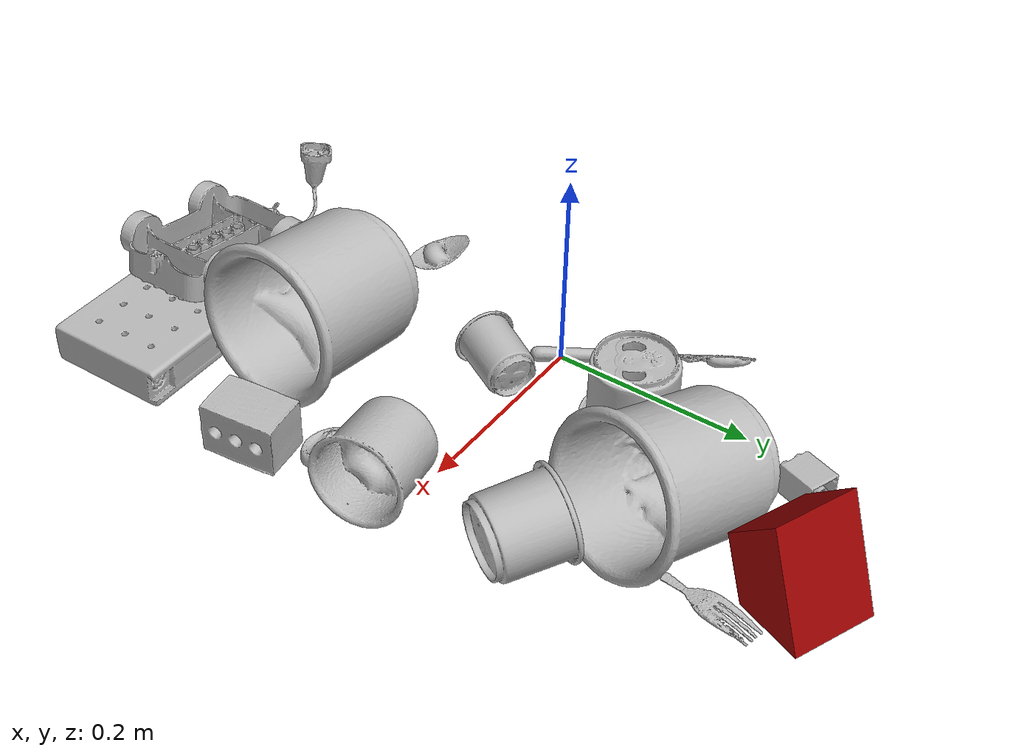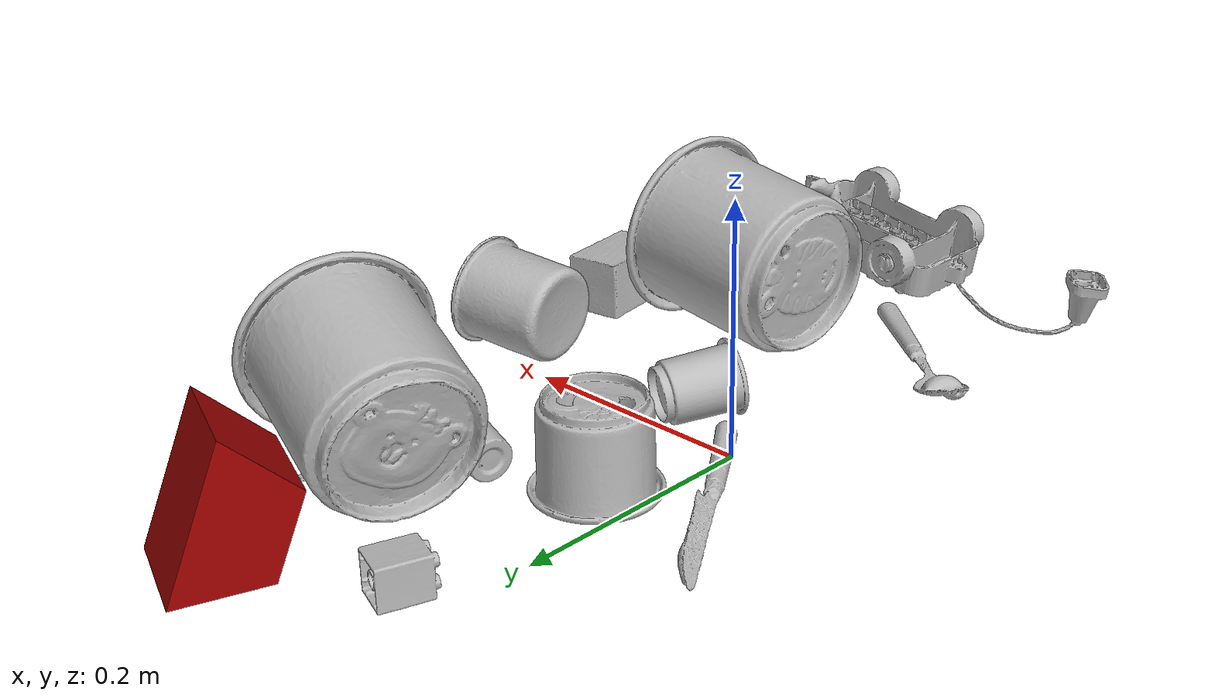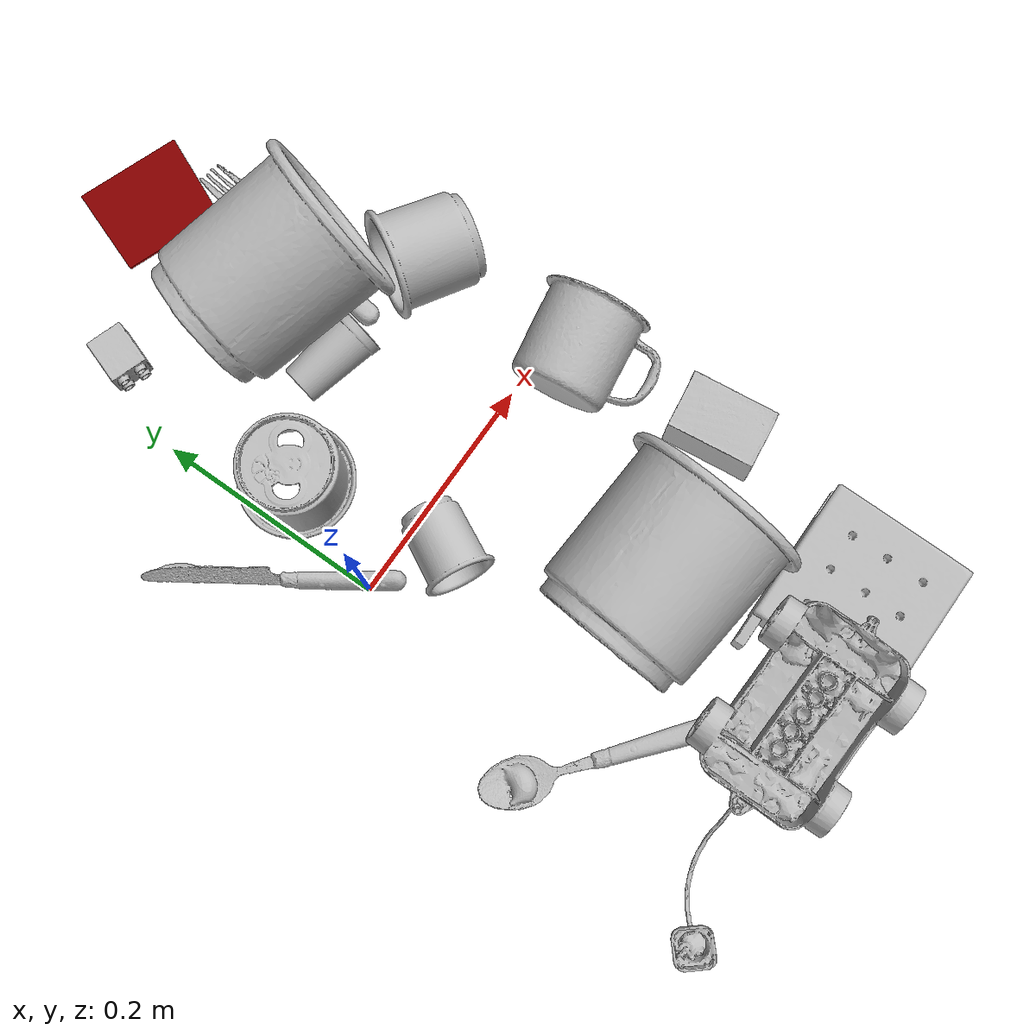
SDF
<sdf version="1.4">
  <world name="default">
    <light name="light1" type="point">
      <pose>0 0 1 0 0 0</pose>
      <diffuse>3 3 3 1</diffuse>
      <specular>3 3 3 1</specular>
    </light>
    <light name="light2" type="point">
      <pose>0 0.5 2 0 0 0</pose>
      <diffuse>1 1 1 1</diffuse>
      <specular>1 1 1 1</specular>
    </light>
    <light name="light3" type="point">
      <pose>0 0.5 2 0 0 0</pose>
      <diffuse>3 3 3 1</diffuse>
      <specular>3 3 3 1</specular>
    </light>
    <scene>
      <ambient>0.7 0.7 0.7</ambient>
    </scene>
    <model name="cup1">
      <link name="link_cup1">
        <collision name="default">
          <geometry>
            <mesh>
              <uri>model://i_cups/collision_meshes/collision.obj</uri>
              <scale>1.0 1.0 1.0</scale>
            </mesh>
          </geometry>
          <surface>
            <friction>
              <ode>
                <mu>0.5</mu>
                <mu2>0.5</mu2>
              </ode>
            </friction>
          <contact>
        <ode>
            <max_vel>0</max_vel>
            <min_depth>0.0001</min_depth>
            <kp>1e8</kp>
        </ode>
    </contact></surface>
        </collision>
        <visual name="default">
          <geometry>
            <mesh>
              <uri>model://i_cups/visual_meshes/visual.dae</uri>
              <scale>1.0 1.0 1.0</scale>
            </mesh>
          </geometry>
        </visual>
        <inertial>
          <mass>0.06118306145071983</mass>
          <pose>0.00011240330786677077 0.00016797454736661166 -0.0008579033892601728 -0.02898356853937009 -0.0398729445813228 -0.3459020996231002</pose>
          <inertia>
            <ixx>8.470886e-05</ixx>
            <iyy>8.5455235e-05</iyy>
            <izz>9.467588e-05</izz>
            <ixy>0</ixy>
            <ixz>0</ixz>
            <iyz>0</iyz>
          </inertia>
        </inertial>
      </link>
      <pose>0.03829262778162956 0.10143056511878967 0.03793303295969963 -3.141592567509173 5.529103180096212e-09 0.8617893823003252</pose>
    </model>
    <model name="silverware1">
      <link name="link_silverware1">
        <collision name="default">
          <geometry>
            <mesh>
              <uri>model://fork/collision_meshes/collision.obj</uri>
              <scale>1.0 1.0 1.0</scale>
            </mesh>
          </geometry>
          <surface>
            <friction>
              <ode>
                <mu>0.5</mu>
                <mu2>0.5</mu2>
              </ode>
            </friction>
          <contact>
        <ode>
            <max_vel>0</max_vel>
            <min_depth>0.0001</min_depth>
            <kp>1e8</kp>
        </ode>
    </contact></surface>
        </collision>
        <visual name="default">
          <geometry>
            <mesh>
              <uri>model://fork/visual_meshes/visual.dae</uri>
              <scale>1.0 1.0 1.0</scale>
            </mesh>
          </geometry>
        </visual>
        <inertial>
          <mass>0.031184576451778412</mass>
          <pose>-0.02957005426287651 0.00046588247641921043 0.0003218861820641905 -0.013551007459636681 -0.010977840933376642 0.014453907264632249</pose>
          <inertia>
            <ixx>1.0931959e-06</ixx>
            <iyy>8.1413935e-05</iyy>
            <izz>8.1902916e-05</izz>
            <ixy>0</ixy>
            <ixz>0</ixz>
            <iyz>0</iyz>
          </inertia>
        </inertial>
      </link>
      <pose>0.19558946788311005 0.22430506348609924 0.007440517656505108 -3.065345013498297 0.002877272533800395 1.4455494328414067</pose>
    </model>
    <model name="cup2">
      <link name="link_cup2">
        <collision name="default">
          <geometry>
            <mesh>
              <uri>model://cup_small/collision_meshes/collision.obj</uri>
              <scale>1.0 1.0 1.0</scale>
            </mesh>
          </geometry>
          <surface>
            <friction>
              <ode>
                <mu>0.5</mu>
                <mu2>0.5</mu2>
              </ode>
            </friction>
          <contact>
        <ode>
            <max_vel>0</max_vel>
            <min_depth>0.0001</min_depth>
            <kp>1e8</kp>
        </ode>
    </contact></surface>
        </collision>
        <visual name="default">
          <geometry>
            <mesh>
              <uri>model://cup_small/visual_meshes/visual.dae</uri>
              <scale>1.0 1.0 1.0</scale>
            </mesh>
          </geometry>
        </visual>
        <inertial>
          <mass>0.03407767415046692</mass>
          <pose>0.0001048250705935061 -0.00033778452780097723 -0.010742825455963612 -0.011493231776776816 -0.015280154496379641 -0.5058119732839097</pose>
          <inertia>
            <ixx>2.0064415e-05</ixx>
            <iyy>2.0167918e-05</iyy>
            <izz>9.059144e-06</izz>
            <ixy>0</ixy>
            <ixz>0</ixz>
            <iyz>0</iyz>
          </inertia>
        </inertial>
      </link>
      <pose>0.13494214415550232 0.13633322715759277 0.020111149176955223 1.4948611076724119 0.14983363203439937 1.3535590875467232</pose>
    </model>
    <model name="silverware2">
      <link name="link_silverware2">
        <collision name="default">
          <geometry>
            <mesh>
              <uri>model://spoon/collision_meshes/collision.obj</uri>
              <scale>1.0 1.0 1.0</scale>
            </mesh>
          </geometry>
          <surface>
            <friction>
              <ode>
                <mu>0.5</mu>
                <mu2>0.5</mu2>
              </ode>
            </friction>
          <contact>
        <ode>
            <max_vel>0</max_vel>
            <min_depth>0.0001</min_depth>
            <kp>1e8</kp>
        </ode>
    </contact></surface>
        </collision>
        <visual name="default">
          <geometry>
            <mesh>
              <uri>model://spoon/visual_meshes/visual.dae</uri>
              <scale>1.0 1.0 1.0</scale>
            </mesh>
          </geometry>
        </visual>
        <inertial>
          <mass>0.016614587977528572</mass>
          <pose>-0.005526317749172449 -0.0016034182626754045 -0.0007271657232195139 0.03521671066550848 -0.039065848782153245 0.0061506117821598484</pose>
          <inertia>
            <ixx>9.241303e-07</ixx>
            <iyy>6.321795e-05</iyy>
            <izz>6.367369e-05</izz>
            <ixy>0</ixy>
            <ixz>0</ixz>
            <iyz>0</iyz>
          </inertia>
        </inertial>
      </link>
      <pose>-0.0072322869673371315 -0.2294524759054184 0.008385264314711094 0.0067301354220609885 0.026892993243567972 2.467001279643878</pose>
    </model>
    <model name="cup3">
      <link name="link_cup3">
        <collision name="default">
          <geometry>
            <mesh>
              <uri>model://mug/collision_meshes/collision.obj</uri>
              <scale>1.0 1.0 1.0</scale>
            </mesh>
          </geometry>
          <surface>
            <friction>
              <ode>
                <mu>0.5</mu>
                <mu2>0.5</mu2>
              </ode>
            </friction>
          <contact>
        <ode>
            <max_vel>0</max_vel>
            <min_depth>0.0001</min_depth>
            <kp>1e8</kp>
        </ode>
    </contact></surface>
        </collision>
        <visual name="default">
          <geometry>
            <mesh>
              <uri>model://mug/visual_meshes/visual.dae</uri>
              <scale>1.0 1.0 1.0</scale>
            </mesh>
          </geometry>
        </visual>
        <inertial>
          <mass>0.2187051922082901</mass>
          <pose>0.009571668691933155 0.0008143252925947309 -0.0109473317861557 -0.1298317614392908 0.08737757629698793 0.05507296169044089</pose>
          <inertia>
            <ixx>0.00021724429</ixx>
            <iyy>0.00024264908</iyy>
            <izz>0.00028062687</izz>
            <ixy>0</ixy>
            <ixz>0</ixz>
            <iyz>0</iyz>
          </inertia>
        </inertial>
      </link>
      <pose>0.2547677755355835 -0.037385351955890656 0.041017085313797 1.4853811752190458 -0.13732982205594688 1.7342483634026498</pose>
    </model>
    <model name="silverware3">
      <link name="link_silverware3">
        <collision name="default">
          <geometry>
            <mesh>
              <uri>model://knife/collision_meshes/collision.obj</uri>
              <scale>1.0 1.0 1.0</scale>
            </mesh>
          </geometry>
          <surface>
            <friction>
              <ode>
                <mu>0.5</mu>
                <mu2>0.5</mu2>
              </ode>
            </friction>
          <contact>
        <ode>
            <max_vel>0</max_vel>
            <min_depth>0.0001</min_depth>
            <kp>1e8</kp>
        </ode>
    </contact></surface>
        </collision>
        <visual name="default">
          <geometry>
            <mesh>
              <uri>model://knife/visual_meshes/visual.dae</uri>
              <scale>1.0 1.0 1.0</scale>
            </mesh>
          </geometry>
        </visual>
        <inertial>
          <mass>0.02527560666203499</mass>
          <pose>-0.02378525398671627 0.0015275124460458755 5.062016498413868e-05 0.07305987488321217 0.01724841707462807 -0.007409821427235137</pose>
          <inertia>
            <ixx>7.174241e-07</ixx>
            <iyy>9.710476e-05</iyy>
            <izz>9.733581e-05</izz>
            <ixy>0</ixy>
            <ixz>0</ixz>
            <iyz>0</iyz>
          </inertia>
        </inertial>
      </link>
      <pose>-0.03656541183590889 0.06820052862167358 0.00891915149986744 -0.898508139502019 0.0041690364197726325 2.1664471698965464</pose>
    </model>
    <model name="cup4">
      <link name="link_cup4">
        <collision name="default">
          <geometry>
            <mesh>
              <uri>model://f_cups/collision_meshes/collision.obj</uri>
              <scale>2.0 2.0 2.0</scale>
            </mesh>
          </geometry>
          <surface>
            <friction>
              <ode>
                <mu>0.5</mu>
                <mu2>0.5</mu2>
              </ode>
            </friction>
          <contact>
        <ode>
            <max_vel>0</max_vel>
            <min_depth>0.0001</min_depth>
            <kp>1e8</kp>
        </ode>
    </contact></surface>
        </collision>
        <visual name="default">
          <geometry>
            <mesh>
              <uri>model://f_cups/visual_meshes/visual.dae</uri>
              <scale>2.0 2.0 2.0</scale>
            </mesh>
          </geometry>
        </visual>
        <inertial>
          <mass>0.45639780163764954</mass>
          <pose>-0.006342936772853136 -0.0012480145087465644 -0.007311072666198015 0.7862311529960513 -0.2607925047248709 -0.18237200478465204</pose>
          <inertia>
            <ixx>0.0017161043</ixx>
            <iyy>0.0018002132</iyy>
            <izz>0.0018740727</izz>
            <ixy>0</ixy>
            <ixz>0</ixz>
            <iyz>0</iyz>
          </inertia>
        </inertial>
      </link>
      <pose>0.13829025626182556 -0.18273326754570007 0.0740615576505661 1.3152017795689483 -1.1784104013590582 1.7275942334327268</pose>
    </model>
    <model name="cup41">
      <link name="link_cup41">
        <collision name="default">
          <geometry>
            <mesh>
              <uri>model://b_cups/collision_meshes/collision.obj</uri>
              <scale>1.0 1.0 1.0</scale>
            </mesh>
          </geometry>
          <surface>
            <friction>
              <ode>
                <mu>0.5</mu>
                <mu2>0.5</mu2>
              </ode>
            </friction>
          <contact>
        <ode>
            <max_vel>0</max_vel>
            <min_depth>0.0001</min_depth>
            <kp>1e8</kp>
        </ode>
    </contact></surface>
        </collision>
        <visual name="default">
          <geometry>
            <mesh>
              <uri>model://b_cups/visual_meshes/visual.dae</uri>
              <scale>1.0 1.0 1.0</scale>
            </mesh>
          </geometry>
        </visual>
        <inertial>
          <mass>0.02191556617617607</mass>
          <pose>0.0005182005115784705 0.0018058598507195711 -0.0013381809694692492 0.11356347292067202 0.038725069075056226 -0.34569439603942165</pose>
          <inertia>
            <ixx>1.4345273e-05</ixx>
            <iyy>1.4072923e-05</iyy>
            <izz>1.2071279e-05</izz>
            <ixy>0</ixy>
            <ixz>0</ixz>
            <iyz>0</iyz>
          </inertia>
        </inertial>
      </link>
      <pose>0.0630800798535347 -0.030087526887655258 0.027552533894777298 -1.3130563011839778 -1.187312763275135 2.4229261803464213</pose>
    </model>
    <model name="cup5">
      <link name="link_cup5">
        <collision name="default">
          <geometry>
            <mesh>
              <uri>model://e_cups/collision_meshes/collision.obj</uri>
              <scale>2.0 2.0 2.0</scale>
            </mesh>
          </geometry>
          <surface>
            <friction>
              <ode>
                <mu>0.5</mu>
                <mu2>0.5</mu2>
              </ode>
            </friction>
          <contact>
        <ode>
            <max_vel>0</max_vel>
            <min_depth>0.0001</min_depth>
            <kp>1e8</kp>
        </ode>
    </contact></surface>
        </collision>
        <visual name="default">
          <geometry>
            <mesh>
              <uri>model://e_cups/visual_meshes/visual.dae</uri>
              <scale>2.0 2.0 2.0</scale>
            </mesh>
          </geometry>
        </visual>
        <inertial>
          <mass>0.30448246002197266</mass>
          <pose>0.0022711469791829586 0.005759572610259056 -0.00776594178751111 0.6952384510578399 0.08767941436067322 -0.5235260729612989</pose>
          <inertia>
            <ixx>0.0010739095</ixx>
            <iyy>0.001122389</iyy>
            <izz>0.0010267813</izz>
            <ixy>0</ixy>
            <ixz>0</ixz>
            <iyz>0</iyz>
          </inertia>
        </inertial>
      </link>
      <pose>0.15420405566692352 0.20456190407276154 0.07459890097379684 -1.248310403276486 0.8897901431044924 -1.6177572135025537</pose>
    </model>
    <model name="cup51">
      <link name="link_cup51">
        <collision name="default">
          <geometry>
            <mesh>
              <uri>model://h_cups/collision_meshes/collision.obj</uri>
              <scale>1.0 1.0 1.0</scale>
            </mesh>
          </geometry>
          <surface>
            <friction>
              <ode>
                <mu>0.5</mu>
                <mu2>0.5</mu2>
              </ode>
            </friction>
          <contact>
        <ode>
            <max_vel>0</max_vel>
            <min_depth>0.0001</min_depth>
            <kp>1e8</kp>
        </ode>
    </contact></surface>
        </collision>
        <visual name="default">
          <geometry>
            <mesh>
              <uri>model://h_cups/visual_meshes/visual.dae</uri>
              <scale>1.0 1.0 1.0</scale>
            </mesh>
          </geometry>
        </visual>
        <inertial>
          <mass>0.042455922812223434</mass>
          <pose>-2.703044083318673e-05 0.00023018660431262106 -0.0018405403243377805 -0.024361995264993386 0.06545231449212868 0.1288536550905752</pose>
          <inertia>
            <ixx>5.4829856e-05</ixx>
            <iyy>5.4175573e-05</iyy>
            <izz>5.7501496e-05</izz>
            <ixy>0</ixy>
            <ixz>0</ixz>
            <iyz>0</iyz>
          </inertia>
        </inertial>
      </link>
      <pose>0.2489762008190155 0.1198386698961258 0.042393166571855545 -1.3761102234054334 0.9879841214908901 1.184510944242819</pose>
    </model>
    <model name="toy1">
      <link name="link_toy1">
        <collision name="default">
          <geometry>
            <mesh>
              <uri>model://f_lego_duplo/collision_meshes/collision.obj</uri>
              <scale>1.0 1.0 1.0</scale>
            </mesh>
          </geometry>
          <surface>
            <friction>
              <ode>
                <mu>0.5</mu>
                <mu2>0.5</mu2>
              </ode>
            </friction>
          <contact>
        <ode>
            <max_vel>0</max_vel>
            <min_depth>0.0001</min_depth>
            <kp>1e8</kp>
        </ode>
    </contact></surface>
        </collision>
        <visual name="default">
          <geometry>
            <mesh>
              <uri>model://f_lego_duplo/visual_meshes/visual.dae</uri>
              <scale>1.0 1.0 1.0</scale>
            </mesh>
          </geometry>
        </visual>
        <inertial>
          <mass>0.02241816557943821</mass>
          <pose>2.3694117771810852e-05 0.0001339316659141332 0.0018837875686585903 0.029838520561624126 -0.014425134948969536 -0.6756620822172864</pose>
          <inertia>
            <ixx>4.7370827e-06</ixx>
            <iyy>4.779284e-06</iyy>
            <izz>4.1119874e-06</izz>
            <ixy>0</ixy>
            <ixz>0</ixz>
            <iyz>0</iyz>
          </inertia>
        </inertial>
      </link>
      <pose>0.03523813560605049 0.2758485972881317 0.016363853588700294 0.6690000901443552 -1.5707396663209274 0.5692863556477359</pose>
    </model>
    <model name="toy2">
      <link name="link_toy2">
        <collision name="default">
          <geometry>
            <mesh>
              <uri>model://nine_hole_peg_test/collision_meshes/collision.obj</uri>
              <scale>1.0 1.0 1.0</scale>
            </mesh>
          </geometry>
          <surface>
            <friction>
              <ode>
                <mu>0.5</mu>
                <mu2>0.5</mu2>
              </ode>
            </friction>
          <contact>
        <ode>
            <max_vel>0</max_vel>
            <min_depth>0.0001</min_depth>
            <kp>1e8</kp>
        </ode>
    </contact></surface>
        </collision>
        <visual name="default">
          <geometry>
            <mesh>
              <uri>model://nine_hole_peg_test/visual_meshes/visual.dae</uri>
              <scale>1.0 1.0 1.0</scale>
            </mesh>
          </geometry>
        </visual>
        <inertial>
          <mass>0.9336897134780884</mass>
          <pose>-0.004617386497557163 -0.009647615253925323 2.6460686058271676e-05 -0.0014666796876693252 0.0007194179493738156 -0.6342417556307235</pose>
          <inertia>
            <ixx>0.0014599775</ixx>
            <iyy>0.0013631656</iyy>
            <izz>0.0025583105</izz>
            <ixy>0</ixy>
            <ixz>0</ixz>
            <iyz>0</iyz>
          </inertia>
        </inertial>
      </link>
      <pose>0.21137940883636475 -0.31856057047843933 0.02077101171016693 -3.18523841383351e-07 -1.8512769009413318e-07 1.5866327946161716</pose>
    </model>
    <model name="toy3">
      <link name="link_toy3">
        <collision name="default">
          <geometry>
            <mesh>
              <uri>model://prism/collision_meshes/collision.obj</uri>
              <scale>1.0 1.0 1.0</scale>
            </mesh>
          </geometry>
          <surface>
            <friction>
              <ode>
                <mu>0.5</mu>
                <mu2>0.5</mu2>
              </ode>
            </friction>
          <contact>
        <ode>
            <max_vel>0</max_vel>
            <min_depth>0.0001</min_depth>
            <kp>1e8</kp>
        </ode>
    </contact></surface>
        </collision>
        <visual name="default">
          <geometry>
            <mesh>
              <uri>model://prism/visual_meshes/visual.dae</uri>
              <scale>1.0 1.0 1.0</scale>
            </mesh>
          </geometry>
        </visual>
        <inertial>
          <mass>0.45664992928504944</mass>
          <pose>-9.85359656624496e-05 -4.96157269935793e-07 -0.0033869100734591484 0.0 0.006559178903460961 0.0</pose>
          <inertia>
            <ixx>0.0004121209</ixx>
            <iyy>0.00049805344</iyy>
            <izz>0.0006100559</izz>
            <ixy>0</ixy>
            <ixz>0</ixz>
            <iyz>0</iyz>
          </inertia>
        </inertial>
      </link>
      <pose>0.1485053300857544 0.32381531596183777 0.04270760342478752 3.1415923314300476 1.1942062069553798 1.2030309671029475</pose>
    </model>
    <model name="toy4">
      <link name="link_toy4">
        <collision name="default">
          <geometry>
            <mesh>
              <uri>model://g_lego_duplo/collision_meshes/collision.obj</uri>
              <scale>1.0 1.0 1.0</scale>
            </mesh>
          </geometry>
          <surface>
            <friction>
              <ode>
                <mu>0.5</mu>
                <mu2>0.5</mu2>
              </ode>
            </friction>
          <contact>
        <ode>
            <max_vel>0</max_vel>
            <min_depth>0.0001</min_depth>
            <kp>1e8</kp>
        </ode>
    </contact></surface>
        </collision>
        <visual name="default">
          <geometry>
            <mesh>
              <uri>model://g_lego_duplo/visual_meshes/visual.dae</uri>
              <scale>1.0 1.0 1.0</scale>
            </mesh>
          </geometry>
        </visual>
        <inertial>
          <mass>0.39620378613471985</mass>
          <pose>-0.05004769191145897 0.0017554654041305184 0.003880677744746208 0.010963058510667364 0.03810828654928447 -0.09653021192595126</pose>
          <inertia>
            <ixx>0.0005741041</ixx>
            <iyy>0.0017357017</iyy>
            <izz>0.0021714251</izz>
            <ixy>0</ixy>
            <ixz>0</ixz>
            <iyz>0</iyz>
          </inertia>
        </inertial>
      </link>
      <pose>0.053052254021167755 -0.3396371901035309 0.04675117880105972 3.1382085598059253 0.16832718072586172 3.140430874571433</pose>
    </model>
    <model name="toy5">
      <link name="link_toy5">
        <collision name="default">
          <geometry>
            <mesh>
              <uri>model://foam_brick/collision_meshes/collision.obj</uri>
              <scale>1.0 1.0 1.0</scale>
            </mesh>
          </geometry>
          <surface>
            <friction>
              <ode>
                <mu>0.5</mu>
                <mu2>0.5</mu2>
              </ode>
            </friction>
          <contact>
        <ode>
            <max_vel>0</max_vel>
            <min_depth>0.0001</min_depth>
            <kp>1e8</kp>
        </ode>
    </contact></surface>
        </collision>
        <visual name="default">
          <geometry>
            <mesh>
              <uri>model://foam_brick/visual_meshes/visual.dae</uri>
              <scale>1.0 1.0 1.0</scale>
            </mesh>
          </geometry>
        </visual>
        <inertial>
          <mass>0.10564772039651871</mass>
          <pose>-0.00025224717683158815 0.00034584361128509045 -0.00025321010616607964 -0.29402271699624904 0.017274444128295662 -0.0007449905040366932</pose>
          <inertia>
            <ixx>4.6148893e-05</ixx>
            <iyy>7.367908e-05</iyy>
            <izz>7.4615455e-05</izz>
            <ixy>0</ixy>
            <ixz>0</ixz>
            <iyz>0</iyz>
          </inertia>
        </inertial>
      </link>
      <pose>0.27028146386146545 -0.15592972934246063 0.02626490592956543 -1.5819340941240814 -0.012729117914503561 -1.446353934457016</pose>
    </model>
  <physics type="ode">
      <max_contacts>50</max_contacts>
      <ode>
        <solver>
          <type>quick</type>
          <iters>75</iters>
        </solver>
        <constraints>
          <contact_max_correcting_vel>0</contact_max_correcting_vel>
          <contact_surface_layer>0</contact_surface_layer>
        </constraints>
      </ode>
    </physics></world>
</sdf>
